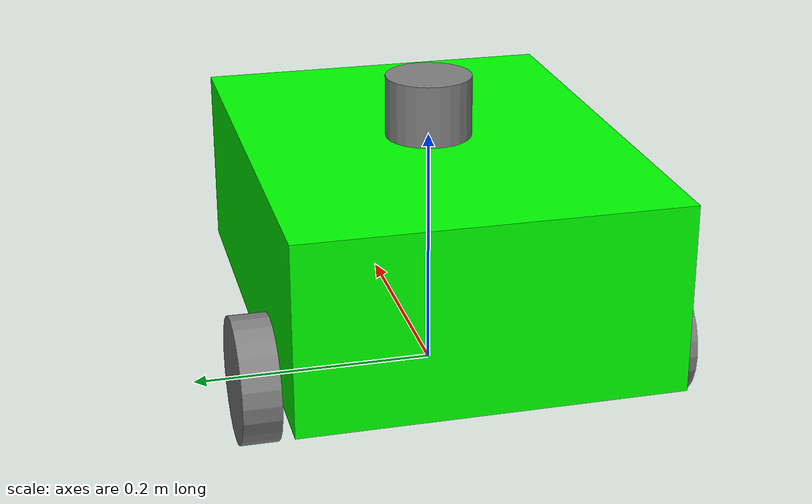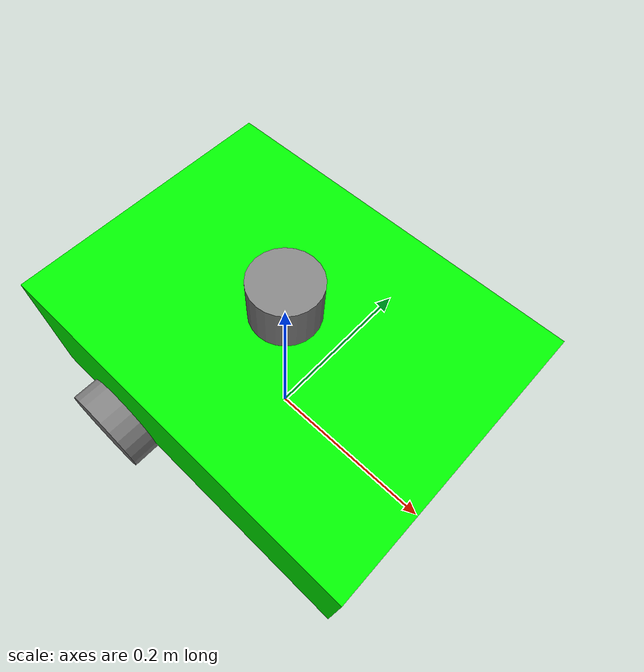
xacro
<?xml version="1.0"?>
<robot name="robot" xmlns:xacro="http://www.ros.org/wiki/xacro">

	<xacro:include filename="$(find my_robot_description)/urdf/robot_gazebo.xacro" />
	<xacro:include filename="$(find my_robot_description)/urdf/robot_ros2_control.xacro" />

	<material name="green">
			<color rgba="0 1 0 1" />
	</material>

	<material name="grey">
			<color rgba="0.5 0.5 0.5 1" />
	</material>

	<material name="yellow">
			<color rgba="1.0 1.0 0 1" />
	</material>

	<xacro:property name="base_length" value="0.4" />
	<xacro:property name="base_width" value="0.3" />
	<xacro:property name="base_height" value="0.15" />
	<xacro:property name="base_mass" value="8.0"/>
	<xacro:property name="wheel_radius" value="0.05" />
	<xacro:property name="wheel_length" value="0.03"/>
	<xacro:property name="wheel_mass" value="0.3"/>
	<xacro:property name="caster_wheel_mass" value="0.1"/>
	<xacro:property name="lidar_radius" value="0.035" />
	<xacro:property name="lidar_length" value="0.05" />
	<xacro:property name="lidar_mass" value="0.15" />
	<xacro:property name="imu_length" value="0.02" />
	<xacro:property name="imu_width" value="0.02" />
	<xacro:property name="imu_height" value="0.005" />
	<xacro:property name="imu_mass" value="0.005"/>

	<xacro:macro name="box_inertial" params="m x y z o_xyz o_rpy">
		<inertial>
			<mass value="${m}"/>
			<origin xyz="${o_xyz}" rpy="${o_rpy}"/>
			<inertia ixx="${(m/12)*(y*y + z*z)}" ixy="0.0" ixz="0.0"
							 iyy="${(m/12)*(x*x + z*z)}" iyz="0.0"
							 izz="${(m/12)*(x*x + y*y)}"/>
		</inertial>
	</xacro:macro>

	<xacro:macro name="sphere_inertial" params="m r o_xyz o_rpy">
		<inertial>
			<mass value="${m}"/>
			<origin xyz="${o_xyz}" rpy="${o_rpy}" />
			<inertia ixx="${(2.0/5.0)*(m*r*r)}" ixy="0.0" ixz="0.0"
							 iyy="${(2.0/5.0)*(m*r*r)}" iyz="0.0"
							 izz="${(2.0/5.0)*(m*r*r)}" />
		</inertial>
	</xacro:macro>

	<xacro:macro name="cylinder_inertial" params="m r h o_xyz o_rpy">
		<inertial>
				<mass value="${m}"/>
				<origin xyz="${o_xyz}" rpy="${o_rpy}"/>
				<inertia ixx="${(m/12)*(3*r*r + h*h)}" ixy="0.0" ixz="0.0"
								 iyy="${(m/12)*(3*r*r + h*h)}" iyz="0.0"
								 izz="${(m*r*r)/2.0}"/>
			</inertial>
	</xacro:macro>

	<xacro:macro name="wheel_link" params="prefix">
		<link name="${prefix}_wheel_link">
			<visual>
				<origin xyz="0 0 0" rpy="${pi / 2.0} 0 0" />
				<geometry>
					<cylinder radius="${wheel_radius}" length="${wheel_length}" />
				</geometry>
				<material name="grey" />
			</visual>
			<xacro:cylinder_inertial m="${wheel_mass}" r="${wheel_radius}" h="${wheel_length}" o_xyz="0 0 0" o_rpy="${pi / 2.0} 0 0" />
			<collision>
				<origin xyz="0 0 0" rpy="0 0 0" />
				<geometry>
					<sphere radius="${wheel_radius}" />
				</geometry>
    	</collision>
		</link>
	</xacro:macro>

	<link name="base_footprint"/>
	<link name="base_link">
		<visual>
			<geometry>
				<box size="${base_length} ${base_width} ${base_height}" />
			</geometry>
			<origin xyz="0 0 ${base_height / 2.0}" rpy="0 0 0"/>
			<material name="green"/>
		</visual>
		<xacro:box_inertial m="${base_mass}" x="${base_length}" y="${base_width}" z="${base_height}" o_xyz="0 0 ${base_height / 2.0}" o_rpy="0 0 0" />
		<collision>
      <origin xyz="0 0 ${base_height / 2.0}" rpy="0 0 0"/>
      <geometry>
        <box size="${base_length} ${base_width} ${base_height}" />
      </geometry>
    </collision>
	</link>
	<xacro:wheel_link prefix="right" />
	<xacro:wheel_link prefix="left" />
	<link name="caster_wheel_link">
		<visual>
			<origin xyz="0 0 0" rpy="0 0 0" />
			<geometry>
				<sphere radius="${wheel_radius / 2.0}" />
			</geometry>
			<material name="grey" />
		</visual>
		<collision>
			<origin xyz="0 0 0" rpy="0 0 0" />
			<geometry>
				<sphere radius="${wheel_radius / 2.0}" />
			</geometry>
    </collision>
		<xacro:sphere_inertial m="${caster_wheel_mass}" r="${wheel_radius / 2.0}"
													 o_xyz="0 0 0" o_rpy="0 0 0" />
	</link>

	<link name="base_scan">
		<visual>
			<origin xyz="0 0 0" rpy="0 0 0" />
			<geometry>
				<cylinder radius="${lidar_radius}" length="${lidar_length}" />
			</geometry>
			<material name="grey" />
		</visual>
		<xacro:cylinder_inertial m="${lidar_mass}" r="${lidar_radius}" h="${lidar_length}" o_xyz="0 0 0" o_rpy="0 0 0" />
		<collision>
			<origin xyz="0 0 0" rpy="0 0 0" />
			<geometry>
				<cylinder radius="${lidar_radius}" length="${lidar_length}" />
			</geometry>
		</collision>
	</link>
	<link name="imu_link">
		<visual>
			<origin xyz="0 0 0" rpy="0 0 0" />
			<geometry>
				<box size="${imu_length} ${imu_width} ${imu_height}" />
			</geometry>
			<material name="yellow" />
		</visual>
		<collision>
			<origin xyz="0 0 0" rpy="0 0 0" />
			<geometry>
				<box size="${imu_length} ${imu_width} ${imu_height}" />
			</geometry>
		</collision>
		<xacro:box_inertial m="${imu_mass}" x="${imu_length}" y="${imu_width}" z="${imu_height}" o_xyz="0 0 0" o_rpy="0 0 0" />
	</link>

	<joint name="base_joint" type="fixed">
		<parent link="base_footprint" />
		<child link="base_link" />
		<origin xyz="0 0 ${wheel_radius}" rpy="0 0 0" />
	</joint>
	<joint name="base_right_wheel_joint" type="continuous">
		<parent link="base_link" />
		<child link="right_wheel_link" />
		<origin xyz="${-(base_length / 4.0)} ${(base_width + wheel_length) / -2.0} 0" rpy="0 0 0" />
		<axis xyz="0 1 0" />
	</joint>
	<joint name="base_left_wheel_joint" type="continuous">
		<parent link="base_link" />
		<child link="left_wheel_link" />
		<origin xyz="${-(base_length / 4.0)} ${(base_width + wheel_length) / 2.0} 0" rpy="0 0 0" />
		<axis xyz="0 1 0" />
	</joint>
	<joint name="base_caster_wheel_joint" type="fixed">
		<parent link="base_link" />
		<child link="caster_wheel_link" />
		<origin xyz="${base_length * (3.0 / 8.0)} 0 ${-(wheel_radius / 2.0)}" rpy="0 0 0" />
	</joint>

	<joint name="base_lidar_joint" type="fixed">
		<parent link="base_link" />
		<child link="base_scan" />
		<origin xyz="0 0 ${base_height + (lidar_length / 2.0)}" rpy="0 0 0" />
	</joint>
	<joint name="base_imu_joint" type="fixed">
		<parent link="base_link" />
		<child link="imu_link" />
		<origin xyz="${-(base_length / 4.0)} 0 ${(base_height / 2.0)}" rpy="0 0 0" />
		<axis xyz="0 0 0"/>
	</joint>

</robot>
